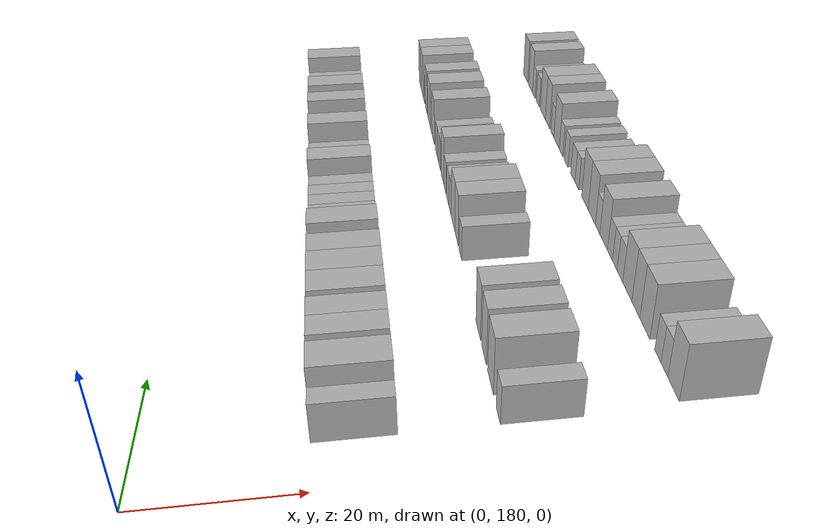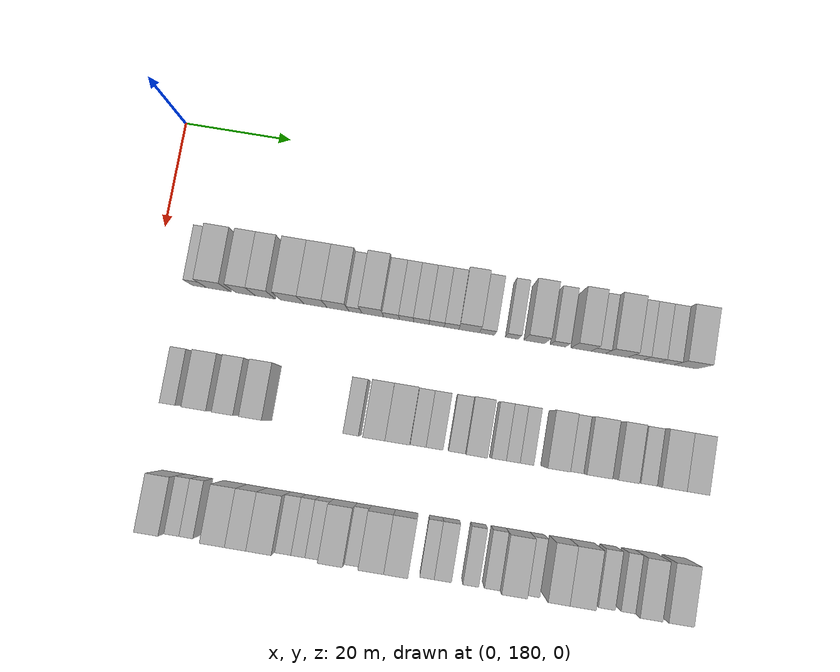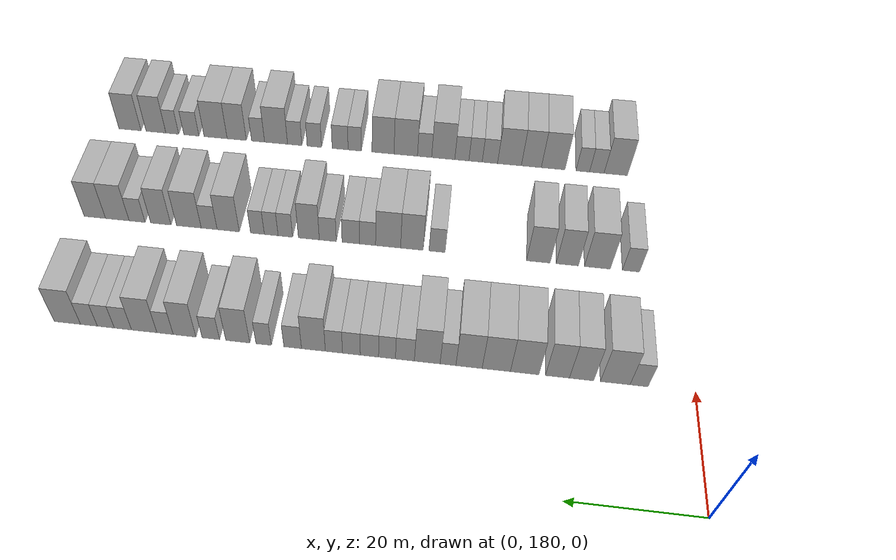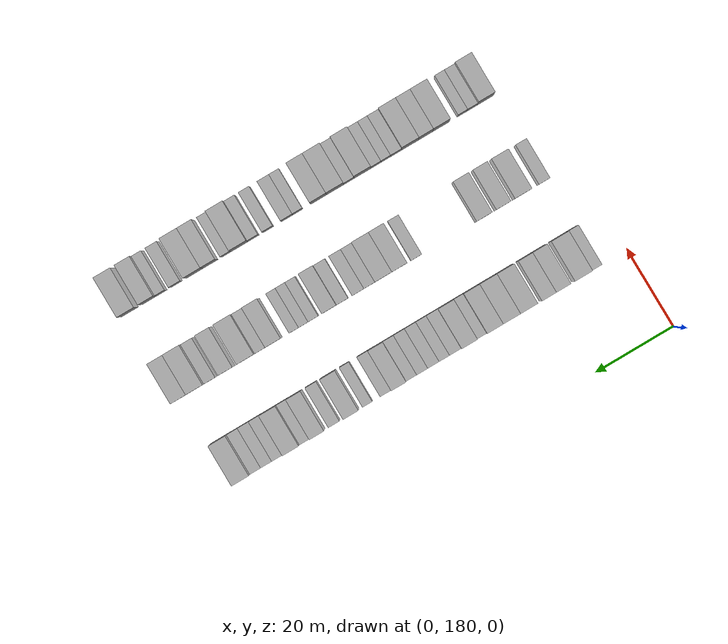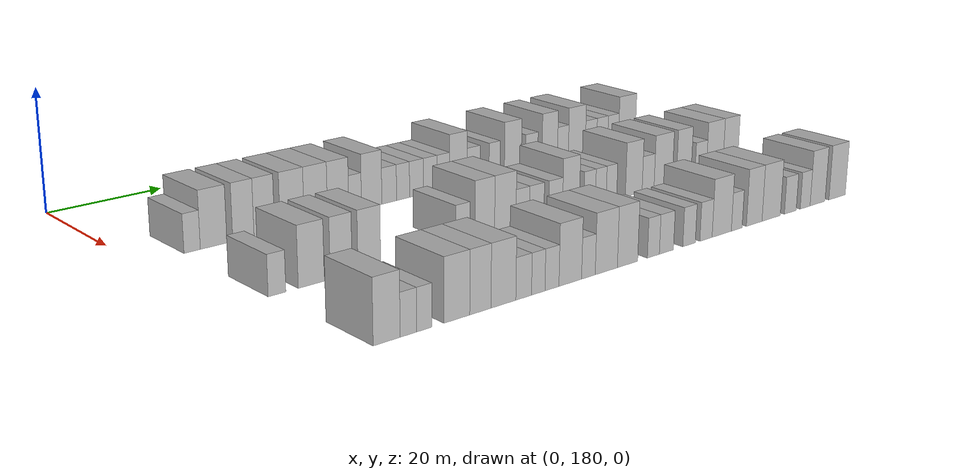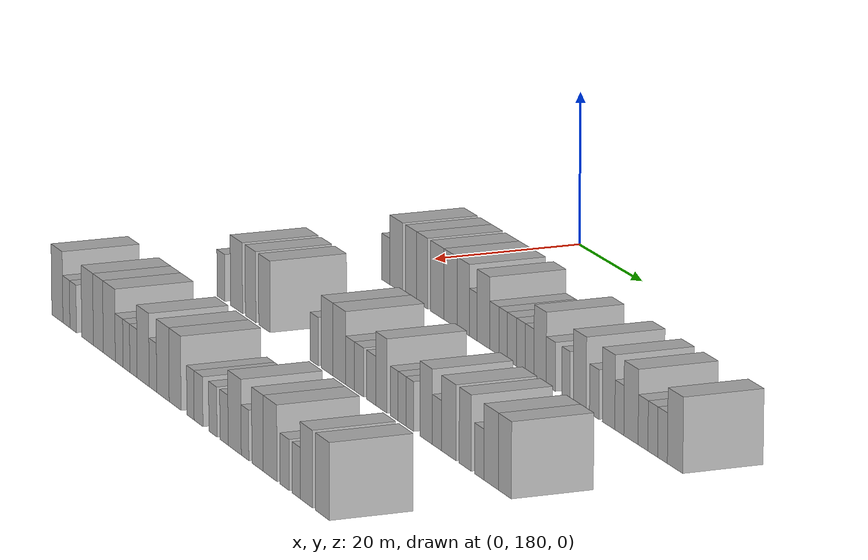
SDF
<sdf version="1.6">
 <world name="default">
  <model name="building_149">
   <static>1</static>
   <pose>25.0000 188.4482 0 0.000000 0.000000 0.000000</pose>
   <link name="link">
    <pose>0 0 3.00 0 0 0</pose>
    <collision name="collision"><geometry><box><size>10.0000 2.7007 6.0000</size></box></geometry></collision>
    <visual name="visual">
     <cast_shadows>0</cast_shadows>
     <geometry><box><size>10.0000 2.7007 6.0000</size></box></geometry>
     <material>
      <script>
       <uri>model://HANNAS_wall/materials/scripts</uri>
       <uri>model://HANNAS_wall/materials/textures</uri>
       <name>vrc/HANNAS_wall</name>
      </script>
     </material>
    </visual>
   </link>
  </model>
  <model name="building_150">
   <static>1</static>
   <pose>25.0000 192.0358 0 0.000000 0.000000 0.000000</pose>
   <link name="link">
    <pose>0 0 4.50 0 0 0</pose>
    <collision name="collision"><geometry><box><size>10.0000 4.4746 9.0000</size></box></geometry></collision>
    <visual name="visual">
     <cast_shadows>0</cast_shadows>
     <geometry><box><size>10.0000 4.4746 9.0000</size></box></geometry>
     <material>
      <script>
       <uri>model://HANNAS_wall/materials/scripts</uri>
       <uri>model://HANNAS_wall/materials/textures</uri>
       <name>vrc/HANNAS_wall</name>
      </script>
     </material>
    </visual>
   </link>
  </model>
  <model name="building_151">
   <static>1</static>
   <pose>25.0000 197.1104 0 0.000000 0.000000 0.000000</pose>
   <link name="link">
    <pose>0 0 4.50 0 0 0</pose>
    <collision name="collision"><geometry><box><size>10.0000 3.6745 9.0000</size></box></geometry></collision>
    <visual name="visual">
     <cast_shadows>0</cast_shadows>
     <geometry><box><size>10.0000 3.6745 9.0000</size></box></geometry>
     <material>
      <script>
       <uri>model://HANNAS_wall/materials/scripts</uri>
       <uri>model://HANNAS_wall/materials/textures</uri>
       <name>vrc/HANNAS_wall</name>
      </script>
     </material>
    </visual>
   </link>
  </model>
  <model name="building_152">
   <static>1</static>
   <pose>25.0000 200.7689 0 0.000000 0.000000 0.000000</pose>
   <link name="link">
    <pose>0 0 4.50 0 0 0</pose>
    <collision name="collision"><geometry><box><size>10.0000 3.6424 9.0000</size></box></geometry></collision>
    <visual name="visual">
     <cast_shadows>0</cast_shadows>
     <geometry><box><size>10.0000 3.6424 9.0000</size></box></geometry>
     <material>
      <script>
       <uri>model://HANNAS_wall/materials/scripts</uri>
       <uri>model://HANNAS_wall/materials/textures</uri>
       <name>vrc/HANNAS_wall</name>
      </script>
     </material>
    </visual>
   </link>
  </model>
  <model name="building_153">
   <static>1</static>
   <pose>25.0000 205.7672 0 0.000000 0.000000 0.000000</pose>
   <link name="link">
    <pose>0 0 4.50 0 0 0</pose>
    <collision name="collision"><geometry><box><size>10.0000 4.3543 9.0000</size></box></geometry></collision>
    <visual name="visual">
     <cast_shadows>0</cast_shadows>
     <geometry><box><size>10.0000 4.3543 9.0000</size></box></geometry>
     <material>
      <script>
       <uri>model://HANNAS_wall/materials/scripts</uri>
       <uri>model://HANNAS_wall/materials/textures</uri>
       <name>vrc/HANNAS_wall</name>
      </script>
     </material>
    </visual>
   </link>
  </model>
  <model name="building_154">
   <static>1</static>
   <pose>25.0000 210.1198 0 0.000000 0.000000 0.000000</pose>
   <link name="link">
    <pose>0 0 4.50 0 0 0</pose>
    <collision name="collision"><geometry><box><size>10.0000 4.3509 9.0000</size></box></geometry></collision>
    <visual name="visual">
     <cast_shadows>0</cast_shadows>
     <geometry><box><size>10.0000 4.3509 9.0000</size></box></geometry>
     <material>
      <script>
       <uri>model://HANNAS_wall/materials/scripts</uri>
       <uri>model://HANNAS_wall/materials/textures</uri>
       <name>vrc/HANNAS_wall</name>
      </script>
     </material>
    </visual>
   </link>
  </model>
  <model name="building_155">
   <static>1</static>
   <pose>25.0000 214.3186 0 0.000000 0.000000 0.000000</pose>
   <link name="link">
    <pose>0 0 4.50 0 0 0</pose>
    <collision name="collision"><geometry><box><size>10.0000 4.0467 9.0000</size></box></geometry></collision>
    <visual name="visual">
     <cast_shadows>0</cast_shadows>
     <geometry><box><size>10.0000 4.0467 9.0000</size></box></geometry>
     <material>
      <script>
       <uri>model://HANNAS_wall/materials/scripts</uri>
       <uri>model://HANNAS_wall/materials/textures</uri>
       <name>vrc/HANNAS_wall</name>
      </script>
     </material>
    </visual>
   </link>
  </model>
  <model name="building_156">
   <static>1</static>
   <pose>25.0000 217.5642 0 0.000000 0.000000 0.000000</pose>
   <link name="link">
    <pose>0 0 3.00 0 0 0</pose>
    <collision name="collision"><geometry><box><size>10.0000 2.4446 6.0000</size></box></geometry></collision>
    <visual name="visual">
     <cast_shadows>0</cast_shadows>
     <geometry><box><size>10.0000 2.4446 6.0000</size></box></geometry>
     <material>
      <script>
       <uri>model://HANNAS_wall/materials/scripts</uri>
       <uri>model://HANNAS_wall/materials/textures</uri>
       <name>vrc/HANNAS_wall</name>
      </script>
     </material>
    </visual>
   </link>
  </model>
  <model name="building_157">
   <static>1</static>
   <pose>25.0000 220.7858 0 0.000000 0.000000 0.000000</pose>
   <link name="link">
    <pose>0 0 4.50 0 0 0</pose>
    <collision name="collision"><geometry><box><size>10.0000 3.9986 9.0000</size></box></geometry></collision>
    <visual name="visual">
     <cast_shadows>0</cast_shadows>
     <geometry><box><size>10.0000 3.9986 9.0000</size></box></geometry>
     <material>
      <script>
       <uri>model://HANNAS_wall/materials/scripts</uri>
       <uri>model://HANNAS_wall/materials/textures</uri>
       <name>vrc/HANNAS_wall</name>
      </script>
     </material>
    </visual>
   </link>
  </model>
  <model name="building_158">
   <static>1</static>
   <pose>25.0000 224.2589 0 0.000000 0.000000 0.000000</pose>
   <link name="link">
    <pose>0 0 3.00 0 0 0</pose>
    <collision name="collision"><geometry><box><size>10.0000 2.9476 6.0000</size></box></geometry></collision>
    <visual name="visual">
     <cast_shadows>0</cast_shadows>
     <geometry><box><size>10.0000 2.9476 6.0000</size></box></geometry>
     <material>
      <script>
       <uri>model://HANNAS_wall/materials/scripts</uri>
       <uri>model://HANNAS_wall/materials/textures</uri>
       <name>vrc/HANNAS_wall</name>
      </script>
     </material>
    </visual>
   </link>
  </model>
  <model name="building_159">
   <static>1</static>
   <pose>25.0000 227.0540 0 0.000000 0.000000 0.000000</pose>
   <link name="link">
    <pose>0 0 3.00 0 0 0</pose>
    <collision name="collision"><geometry><box><size>10.0000 2.6426 6.0000</size></box></geometry></collision>
    <visual name="visual">
     <cast_shadows>0</cast_shadows>
     <geometry><box><size>10.0000 2.6426 6.0000</size></box></geometry>
     <material>
      <script>
       <uri>model://HANNAS_wall/materials/scripts</uri>
       <uri>model://HANNAS_wall/materials/textures</uri>
       <name>vrc/HANNAS_wall</name>
      </script>
     </material>
    </visual>
   </link>
  </model>
  <model name="building_160">
   <static>1</static>
   <pose>25.0000 229.8056 0 0.000000 0.000000 0.000000</pose>
   <link name="link">
    <pose>0 0 3.00 0 0 0</pose>
    <collision name="collision"><geometry><box><size>10.0000 2.8607 6.0000</size></box></geometry></collision>
    <visual name="visual">
     <cast_shadows>0</cast_shadows>
     <geometry><box><size>10.0000 2.8607 6.0000</size></box></geometry>
     <material>
      <script>
       <uri>model://HANNAS_wall/materials/scripts</uri>
       <uri>model://HANNAS_wall/materials/textures</uri>
       <name>vrc/HANNAS_wall</name>
      </script>
     </material>
    </visual>
   </link>
  </model>
  <model name="building_161">
   <static>1</static>
   <pose>25.0000 232.6420 0 0.000000 0.000000 0.000000</pose>
   <link name="link">
    <pose>0 0 3.00 0 0 0</pose>
    <collision name="collision"><geometry><box><size>10.0000 2.8120 6.0000</size></box></geometry></collision>
    <visual name="visual">
     <cast_shadows>0</cast_shadows>
     <geometry><box><size>10.0000 2.8120 6.0000</size></box></geometry>
     <material>
      <script>
       <uri>model://HANNAS_wall/materials/scripts</uri>
       <uri>model://HANNAS_wall/materials/textures</uri>
       <name>vrc/HANNAS_wall</name>
      </script>
     </material>
    </visual>
   </link>
  </model>
  <model name="building_162">
   <static>1</static>
   <pose>25.0000 235.3977 0 0.000000 0.000000 0.000000</pose>
   <link name="link">
    <pose>0 0 3.00 0 0 0</pose>
    <collision name="collision"><geometry><box><size>10.0000 2.6994 6.0000</size></box></geometry></collision>
    <visual name="visual">
     <cast_shadows>0</cast_shadows>
     <geometry><box><size>10.0000 2.6994 6.0000</size></box></geometry>
     <material>
      <script>
       <uri>model://HANNAS_wall/materials/scripts</uri>
       <uri>model://HANNAS_wall/materials/textures</uri>
       <name>vrc/HANNAS_wall</name>
      </script>
     </material>
    </visual>
   </link>
  </model>
  <model name="building_163">
   <static>1</static>
   <pose>25.0000 238.6356 0 0.000000 0.000000 0.000000</pose>
   <link name="link">
    <pose>0 0 4.50 0 0 0</pose>
    <collision name="collision"><geometry><box><size>10.0000 3.7764 9.0000</size></box></geometry></collision>
    <visual name="visual">
     <cast_shadows>0</cast_shadows>
     <geometry><box><size>10.0000 3.7764 9.0000</size></box></geometry>
     <material>
      <script>
       <uri>model://HANNAS_wall/materials/scripts</uri>
       <uri>model://HANNAS_wall/materials/textures</uri>
       <name>vrc/HANNAS_wall</name>
      </script>
     </material>
    </visual>
   </link>
  </model>
  <model name="building_164">
   <static>1</static>
   <pose>25.0000 241.9211 0 0.000000 0.000000 0.000000</pose>
   <link name="link">
    <pose>0 0 3.00 0 0 0</pose>
    <collision name="collision"><geometry><box><size>10.0000 2.7945 6.0000</size></box></geometry></collision>
    <visual name="visual">
     <cast_shadows>0</cast_shadows>
     <geometry><box><size>10.0000 2.7945 6.0000</size></box></geometry>
     <material>
      <script>
       <uri>model://HANNAS_wall/materials/scripts</uri>
       <uri>model://HANNAS_wall/materials/textures</uri>
       <name>vrc/HANNAS_wall</name>
      </script>
     </material>
    </visual>
   </link>
  </model>
  <model name="building_165">
   <static>1</static>
   <pose>25.0000 246.5468 0 0.000000 0.000000 0.000000</pose>
   <link name="link">
    <pose>0 0 3.00 0 0 0</pose>
    <collision name="collision"><geometry><box><size>10.0000 2.4569 6.0000</size></box></geometry></collision>
    <visual name="visual">
     <cast_shadows>0</cast_shadows>
     <geometry><box><size>10.0000 2.4569 6.0000</size></box></geometry>
     <material>
      <script>
       <uri>model://HANNAS_wall/materials/scripts</uri>
       <uri>model://HANNAS_wall/materials/textures</uri>
       <name>vrc/HANNAS_wall</name>
      </script>
     </material>
    </visual>
   </link>
  </model>
  <model name="building_166">
   <static>1</static>
   <pose>25.0000 250.7014 0 0.000000 0.000000 0.000000</pose>
   <link name="link">
    <pose>0 0 4.50 0 0 0</pose>
    <collision name="collision"><geometry><box><size>10.0000 3.8524 9.0000</size></box></geometry></collision>
    <visual name="visual">
     <cast_shadows>0</cast_shadows>
     <geometry><box><size>10.0000 3.8524 9.0000</size></box></geometry>
     <material>
      <script>
       <uri>model://HANNAS_wall/materials/scripts</uri>
       <uri>model://HANNAS_wall/materials/textures</uri>
       <name>vrc/HANNAS_wall</name>
      </script>
     </material>
    </visual>
   </link>
  </model>
  <model name="building_167">
   <static>1</static>
   <pose>25.0000 255.0374 0 0.000000 0.000000 0.000000</pose>
   <link name="link">
    <pose>0 0 3.00 0 0 0</pose>
    <collision name="collision"><geometry><box><size>10.0000 2.8195 6.0000</size></box></geometry></collision>
    <visual name="visual">
     <cast_shadows>0</cast_shadows>
     <geometry><box><size>10.0000 2.8195 6.0000</size></box></geometry>
     <material>
      <script>
       <uri>model://HANNAS_wall/materials/scripts</uri>
       <uri>model://HANNAS_wall/materials/textures</uri>
       <name>vrc/HANNAS_wall</name>
      </script>
     </material>
    </visual>
   </link>
  </model>
  <model name="building_168">
   <static>1</static>
   <pose>25.0000 259.2920 0 0.000000 0.000000 0.000000</pose>
   <link name="link">
    <pose>0 0 4.50 0 0 0</pose>
    <collision name="collision"><geometry><box><size>10.0000 3.6897 9.0000</size></box></geometry></collision>
    <visual name="visual">
     <cast_shadows>0</cast_shadows>
     <geometry><box><size>10.0000 3.6897 9.0000</size></box></geometry>
     <material>
      <script>
       <uri>model://HANNAS_wall/materials/scripts</uri>
       <uri>model://HANNAS_wall/materials/textures</uri>
       <name>vrc/HANNAS_wall</name>
      </script>
     </material>
    </visual>
   </link>
  </model>
  <model name="building_169">
   <static>1</static>
   <pose>25.0000 262.4542 0 0.000000 0.000000 0.000000</pose>
   <link name="link">
    <pose>0 0 3.00 0 0 0</pose>
    <collision name="collision"><geometry><box><size>10.0000 2.6346 6.0000</size></box></geometry></collision>
    <visual name="visual">
     <cast_shadows>0</cast_shadows>
     <geometry><box><size>10.0000 2.6346 6.0000</size></box></geometry>
     <material>
      <script>
       <uri>model://HANNAS_wall/materials/scripts</uri>
       <uri>model://HANNAS_wall/materials/textures</uri>
       <name>vrc/HANNAS_wall</name>
      </script>
     </material>
    </visual>
   </link>
  </model>
  <model name="building_170">
   <static>1</static>
   <pose>25.0000 265.8490 0 0.000000 0.000000 0.000000</pose>
   <link name="link">
    <pose>0 0 4.50 0 0 0</pose>
    <collision name="collision"><geometry><box><size>10.0000 4.1551 9.0000</size></box></geometry></collision>
    <visual name="visual">
     <cast_shadows>0</cast_shadows>
     <geometry><box><size>10.0000 4.1551 9.0000</size></box></geometry>
     <material>
      <script>
       <uri>model://HANNAS_wall/materials/scripts</uri>
       <uri>model://HANNAS_wall/materials/textures</uri>
       <name>vrc/HANNAS_wall</name>
      </script>
     </material>
    </visual>
   </link>
  </model>
  <model name="building_171">
   <static>1</static>
   <pose>25.0000 269.3422 0 0.000000 0.000000 0.000000</pose>
   <link name="link">
    <pose>0 0 3.00 0 0 0</pose>
    <collision name="collision"><geometry><box><size>10.0000 2.8313 6.0000</size></box></geometry></collision>
    <visual name="visual">
     <cast_shadows>0</cast_shadows>
     <geometry><box><size>10.0000 2.8313 6.0000</size></box></geometry>
     <material>
      <script>
       <uri>model://HANNAS_wall/materials/scripts</uri>
       <uri>model://HANNAS_wall/materials/textures</uri>
       <name>vrc/HANNAS_wall</name>
      </script>
     </material>
    </visual>
   </link>
  </model>
  <model name="building_172">
   <static>1</static>
   <pose>25.0000 272.1511 0 0.000000 0.000000 0.000000</pose>
   <link name="link">
    <pose>0 0 3.00 0 0 0</pose>
    <collision name="collision"><geometry><box><size>10.0000 2.7865 6.0000</size></box></geometry></collision>
    <visual name="visual">
     <cast_shadows>0</cast_shadows>
     <geometry><box><size>10.0000 2.7865 6.0000</size></box></geometry>
     <material>
      <script>
       <uri>model://HANNAS_wall/materials/scripts</uri>
       <uri>model://HANNAS_wall/materials/textures</uri>
       <name>vrc/HANNAS_wall</name>
      </script>
     </material>
    </visual>
   </link>
  </model>
  <model name="building_173">
   <static>1</static>
   <pose>25.0000 274.9294 0 0.000000 0.000000 0.000000</pose>
   <link name="link">
    <pose>0 0 3.00 0 0 0</pose>
    <collision name="collision"><geometry><box><size>10.0000 2.7701 6.0000</size></box></geometry></collision>
    <visual name="visual">
     <cast_shadows>0</cast_shadows>
     <geometry><box><size>10.0000 2.7701 6.0000</size></box></geometry>
     <material>
      <script>
       <uri>model://HANNAS_wall/materials/scripts</uri>
       <uri>model://HANNAS_wall/materials/textures</uri>
       <name>vrc/HANNAS_wall</name>
      </script>
     </material>
    </visual>
   </link>
  </model>
  <model name="building_174">
   <static>1</static>
   <pose>25.0000 278.4952 0 0.000000 0.000000 0.000000</pose>
   <link name="link">
    <pose>0 0 4.50 0 0 0</pose>
    <collision name="collision"><geometry><box><size>10.0000 4.3614 9.0000</size></box></geometry></collision>
    <visual name="visual">
     <cast_shadows>0</cast_shadows>
     <geometry><box><size>10.0000 4.3614 9.0000</size></box></geometry>
     <material>
      <script>
       <uri>model://HANNAS_wall/materials/scripts</uri>
       <uri>model://HANNAS_wall/materials/textures</uri>
       <name>vrc/HANNAS_wall</name>
      </script>
     </material>
    </visual>
   </link>
  </model>
  <model name="building_339">
   <static>1</static>
   <pose>47.0000 188.5526 0 0.000000 0.000000 0.000000</pose>
   <link name="link">
    <pose>0 0 3.00 0 0 0</pose>
    <collision name="collision"><geometry><box><size>10.0000 2.8192 6.0000</size></box></geometry></collision>
    <visual name="visual">
     <cast_shadows>0</cast_shadows>
     <geometry><box><size>10.0000 2.8192 6.0000</size></box></geometry>
     <material>
      <script>
       <uri>model://HANNAS_wall/materials/scripts</uri>
       <uri>model://HANNAS_wall/materials/textures</uri>
       <name>vrc/HANNAS_wall</name>
      </script>
     </material>
    </visual>
   </link>
  </model>
  <model name="building_340">
   <static>1</static>
   <pose>47.0000 194.1076 0 0.000000 0.000000 0.000000</pose>
   <link name="link">
    <pose>0 0 4.50 0 0 0</pose>
    <collision name="collision"><geometry><box><size>10.0000 4.2909 9.0000</size></box></geometry></collision>
    <visual name="visual">
     <cast_shadows>0</cast_shadows>
     <geometry><box><size>10.0000 4.2909 9.0000</size></box></geometry>
     <material>
      <script>
       <uri>model://HANNAS_wall/materials/scripts</uri>
       <uri>model://HANNAS_wall/materials/textures</uri>
       <name>vrc/HANNAS_wall</name>
      </script>
     </material>
    </visual>
   </link>
  </model>
  <model name="building_341">
   <static>1</static>
   <pose>47.0000 199.1031 0 0.000000 0.000000 0.000000</pose>
   <link name="link">
    <pose>0 0 4.50 0 0 0</pose>
    <collision name="collision"><geometry><box><size>10.0000 3.7001 9.0000</size></box></geometry></collision>
    <visual name="visual">
     <cast_shadows>0</cast_shadows>
     <geometry><box><size>10.0000 3.7001 9.0000</size></box></geometry>
     <material>
      <script>
       <uri>model://HANNAS_wall/materials/scripts</uri>
       <uri>model://HANNAS_wall/materials/textures</uri>
       <name>vrc/HANNAS_wall</name>
      </script>
     </material>
    </visual>
   </link>
  </model>
  <model name="building_342">
   <static>1</static>
   <pose>47.0000 203.9325 0 0.000000 0.000000 0.000000</pose>
   <link name="link">
    <pose>0 0 4.50 0 0 0</pose>
    <collision name="collision"><geometry><box><size>10.0000 3.9587 9.0000</size></box></geometry></collision>
    <visual name="visual">
     <cast_shadows>0</cast_shadows>
     <geometry><box><size>10.0000 3.9587 9.0000</size></box></geometry>
     <material>
      <script>
       <uri>model://HANNAS_wall/materials/scripts</uri>
       <uri>model://HANNAS_wall/materials/textures</uri>
       <name>vrc/HANNAS_wall</name>
      </script>
     </material>
    </visual>
   </link>
  </model>
  <model name="building_343">
   <static>1</static>
   <pose>47.0000 221.0221 0 0.000000 0.000000 0.000000</pose>
   <link name="link">
    <pose>0 0 3.00 0 0 0</pose>
    <collision name="collision"><geometry><box><size>10.0000 2.7402 6.0000</size></box></geometry></collision>
    <visual name="visual">
     <cast_shadows>0</cast_shadows>
     <geometry><box><size>10.0000 2.7402 6.0000</size></box></geometry>
     <material>
      <script>
       <uri>model://HANNAS_wall/materials/scripts</uri>
       <uri>model://HANNAS_wall/materials/textures</uri>
       <name>vrc/HANNAS_wall</name>
      </script>
     </material>
    </visual>
   </link>
  </model>
  <model name="building_344">
   <static>1</static>
   <pose>47.0000 225.3161 0 0.000000 0.000000 0.000000</pose>
   <link name="link">
    <pose>0 0 4.50 0 0 0</pose>
    <collision name="collision"><geometry><box><size>10.0000 3.8478 9.0000</size></box></geometry></collision>
    <visual name="visual">
     <cast_shadows>0</cast_shadows>
     <geometry><box><size>10.0000 3.8478 9.0000</size></box></geometry>
     <material>
      <script>
       <uri>model://HANNAS_wall/materials/scripts</uri>
       <uri>model://HANNAS_wall/materials/textures</uri>
       <name>vrc/HANNAS_wall</name>
      </script>
     </material>
    </visual>
   </link>
  </model>
  <model name="building_345">
   <static>1</static>
   <pose>47.0000 229.3897 0 0.000000 0.000000 0.000000</pose>
   <link name="link">
    <pose>0 0 4.50 0 0 0</pose>
    <collision name="collision"><geometry><box><size>10.0000 4.2993 9.0000</size></box></geometry></collision>
    <visual name="visual">
     <cast_shadows>0</cast_shadows>
     <geometry><box><size>10.0000 4.2993 9.0000</size></box></geometry>
     <material>
      <script>
       <uri>model://HANNAS_wall/materials/scripts</uri>
       <uri>model://HANNAS_wall/materials/textures</uri>
       <name>vrc/HANNAS_wall</name>
      </script>
     </material>
    </visual>
   </link>
  </model>
  <model name="building_346">
   <static>1</static>
   <pose>47.0000 232.9323 0 0.000000 0.000000 0.000000</pose>
   <link name="link">
    <pose>0 0 3.00 0 0 0</pose>
    <collision name="collision"><geometry><box><size>10.0000 2.7858 6.0000</size></box></geometry></collision>
    <visual name="visual">
     <cast_shadows>0</cast_shadows>
     <geometry><box><size>10.0000 2.7858 6.0000</size></box></geometry>
     <material>
      <script>
       <uri>model://HANNAS_wall/materials/scripts</uri>
       <uri>model://HANNAS_wall/materials/textures</uri>
       <name>vrc/HANNAS_wall</name>
      </script>
     </material>
    </visual>
   </link>
  </model>
  <model name="building_347">
   <static>1</static>
   <pose>47.0000 235.8226 0 0.000000 0.000000 0.000000</pose>
   <link name="link">
    <pose>0 0 3.00 0 0 0</pose>
    <collision name="collision"><geometry><box><size>10.0000 2.9950 6.0000</size></box></geometry></collision>
    <visual name="visual">
     <cast_shadows>0</cast_shadows>
     <geometry><box><size>10.0000 2.9950 6.0000</size></box></geometry>
     <material>
      <script>
       <uri>model://HANNAS_wall/materials/scripts</uri>
       <uri>model://HANNAS_wall/materials/textures</uri>
       <name>vrc/HANNAS_wall</name>
      </script>
     </material>
    </visual>
   </link>
  </model>
  <model name="building_348">
   <static>1</static>
   <pose>47.0000 239.7921 0 0.000000 0.000000 0.000000</pose>
   <link name="link">
    <pose>0 0 3.00 0 0 0</pose>
    <collision name="collision"><geometry><box><size>10.0000 2.9439 6.0000</size></box></geometry></collision>
    <visual name="visual">
     <cast_shadows>0</cast_shadows>
     <geometry><box><size>10.0000 2.9439 6.0000</size></box></geometry>
     <material>
      <script>
       <uri>model://HANNAS_wall/materials/scripts</uri>
       <uri>model://HANNAS_wall/materials/textures</uri>
       <name>vrc/HANNAS_wall</name>
      </script>
     </material>
    </visual>
   </link>
  </model>
  <model name="building_349">
   <static>1</static>
   <pose>47.0000 243.0824 0 0.000000 0.000000 0.000000</pose>
   <link name="link">
    <pose>0 0 4.50 0 0 0</pose>
    <collision name="collision"><geometry><box><size>10.0000 3.6366 9.0000</size></box></geometry></collision>
    <visual name="visual">
     <cast_shadows>0</cast_shadows>
     <geometry><box><size>10.0000 3.6366 9.0000</size></box></geometry>
     <material>
      <script>
       <uri>model://HANNAS_wall/materials/scripts</uri>
       <uri>model://HANNAS_wall/materials/textures</uri>
       <name>vrc/HANNAS_wall</name>
      </script>
     </material>
    </visual>
   </link>
  </model>
  <model name="building_350">
   <static>1</static>
   <pose>47.0000 247.1725 0 0.000000 0.000000 0.000000</pose>
   <link name="link">
    <pose>0 0 3.00 0 0 0</pose>
    <collision name="collision"><geometry><box><size>10.0000 2.5435 6.0000</size></box></geometry></collision>
    <visual name="visual">
     <cast_shadows>0</cast_shadows>
     <geometry><box><size>10.0000 2.5435 6.0000</size></box></geometry>
     <material>
      <script>
       <uri>model://HANNAS_wall/materials/scripts</uri>
       <uri>model://HANNAS_wall/materials/textures</uri>
       <name>vrc/HANNAS_wall</name>
      </script>
     </material>
    </visual>
   </link>
  </model>
  <model name="building_351">
   <static>1</static>
   <pose>47.0000 249.6537 0 0.000000 0.000000 0.000000</pose>
   <link name="link">
    <pose>0 0 3.00 0 0 0</pose>
    <collision name="collision"><geometry><box><size>10.0000 2.4189 6.0000</size></box></geometry></collision>
    <visual name="visual">
     <cast_shadows>0</cast_shadows>
     <geometry><box><size>10.0000 2.4189 6.0000</size></box></geometry>
     <material>
      <script>
       <uri>model://HANNAS_wall/materials/scripts</uri>
       <uri>model://HANNAS_wall/materials/textures</uri>
       <name>vrc/HANNAS_wall</name>
      </script>
     </material>
    </visual>
   </link>
  </model>
  <model name="building_352">
   <static>1</static>
   <pose>47.0000 252.0635 0 0.000000 0.000000 0.000000</pose>
   <link name="link">
    <pose>0 0 3.00 0 0 0</pose>
    <collision name="collision"><geometry><box><size>10.0000 2.4008 6.0000</size></box></geometry></collision>
    <visual name="visual">
     <cast_shadows>0</cast_shadows>
     <geometry><box><size>10.0000 2.4008 6.0000</size></box></geometry>
     <material>
      <script>
       <uri>model://HANNAS_wall/materials/scripts</uri>
       <uri>model://HANNAS_wall/materials/textures</uri>
       <name>vrc/HANNAS_wall</name>
      </script>
     </material>
    </visual>
   </link>
  </model>
  <model name="building_353">
   <static>1</static>
   <pose>47.0000 257.2167 0 0.000000 0.000000 0.000000</pose>
   <link name="link">
    <pose>0 0 4.50 0 0 0</pose>
    <collision name="collision"><geometry><box><size>10.0000 3.9056 9.0000</size></box></geometry></collision>
    <visual name="visual">
     <cast_shadows>0</cast_shadows>
     <geometry><box><size>10.0000 3.9056 9.0000</size></box></geometry>
     <material>
      <script>
       <uri>model://HANNAS_wall/materials/scripts</uri>
       <uri>model://HANNAS_wall/materials/textures</uri>
       <name>vrc/HANNAS_wall</name>
      </script>
     </material>
    </visual>
   </link>
  </model>
  <model name="building_354">
   <static>1</static>
   <pose>47.0000 260.5837 0 0.000000 0.000000 0.000000</pose>
   <link name="link">
    <pose>0 0 3.00 0 0 0</pose>
    <collision name="collision"><geometry><box><size>10.0000 2.8284 6.0000</size></box></geometry></collision>
    <visual name="visual">
     <cast_shadows>0</cast_shadows>
     <geometry><box><size>10.0000 2.8284 6.0000</size></box></geometry>
     <material>
      <script>
       <uri>model://HANNAS_wall/materials/scripts</uri>
       <uri>model://HANNAS_wall/materials/textures</uri>
       <name>vrc/HANNAS_wall</name>
      </script>
     </material>
    </visual>
   </link>
  </model>
  <model name="building_355">
   <static>1</static>
   <pose>47.0000 264.1910 0 0.000000 0.000000 0.000000</pose>
   <link name="link">
    <pose>0 0 4.50 0 0 0</pose>
    <collision name="collision"><geometry><box><size>10.0000 4.3862 9.0000</size></box></geometry></collision>
    <visual name="visual">
     <cast_shadows>0</cast_shadows>
     <geometry><box><size>10.0000 4.3862 9.0000</size></box></geometry>
     <material>
      <script>
       <uri>model://HANNAS_wall/materials/scripts</uri>
       <uri>model://HANNAS_wall/materials/textures</uri>
       <name>vrc/HANNAS_wall</name>
      </script>
     </material>
    </visual>
   </link>
  </model>
  <model name="building_356">
   <static>1</static>
   <pose>47.0000 269.1926 0 0.000000 0.000000 0.000000</pose>
   <link name="link">
    <pose>0 0 4.50 0 0 0</pose>
    <collision name="collision"><geometry><box><size>10.0000 3.6171 9.0000</size></box></geometry></collision>
    <visual name="visual">
     <cast_shadows>0</cast_shadows>
     <geometry><box><size>10.0000 3.6171 9.0000</size></box></geometry>
     <material>
      <script>
       <uri>model://HANNAS_wall/materials/scripts</uri>
       <uri>model://HANNAS_wall/materials/textures</uri>
       <name>vrc/HANNAS_wall</name>
      </script>
     </material>
    </visual>
   </link>
  </model>
  <model name="building_357">
   <static>1</static>
   <pose>47.0000 273.4347 0 0.000000 0.000000 0.000000</pose>
   <link name="link">
    <pose>0 0 3.00 0 0 0</pose>
    <collision name="collision"><geometry><box><size>10.0000 2.8671 6.0000</size></box></geometry></collision>
    <visual name="visual">
     <cast_shadows>0</cast_shadows>
     <geometry><box><size>10.0000 2.8671 6.0000</size></box></geometry>
     <material>
      <script>
       <uri>model://HANNAS_wall/materials/scripts</uri>
       <uri>model://HANNAS_wall/materials/textures</uri>
       <name>vrc/HANNAS_wall</name>
      </script>
     </material>
    </visual>
   </link>
  </model>
  <model name="building_358">
   <static>1</static>
   <pose>47.0000 276.9937 0 0.000000 0.000000 0.000000</pose>
   <link name="link">
    <pose>0 0 4.50 0 0 0</pose>
    <collision name="collision"><geometry><box><size>10.0000 4.2508 9.0000</size></box></geometry></collision>
    <visual name="visual">
     <cast_shadows>0</cast_shadows>
     <geometry><box><size>10.0000 4.2508 9.0000</size></box></geometry>
     <material>
      <script>
       <uri>model://HANNAS_wall/materials/scripts</uri>
       <uri>model://HANNAS_wall/materials/textures</uri>
       <name>vrc/HANNAS_wall</name>
      </script>
     </material>
    </visual>
   </link>
  </model>
  <model name="building_359">
   <static>1</static>
   <pose>47.0000 281.0443 0 0.000000 0.000000 0.000000</pose>
   <link name="link">
    <pose>0 0 4.50 0 0 0</pose>
    <collision name="collision"><geometry><box><size>10.0000 3.8504 9.0000</size></box></geometry></collision>
    <visual name="visual">
     <cast_shadows>0</cast_shadows>
     <geometry><box><size>10.0000 3.8504 9.0000</size></box></geometry>
     <material>
      <script>
       <uri>model://HANNAS_wall/materials/scripts</uri>
       <uri>model://HANNAS_wall/materials/textures</uri>
       <name>vrc/HANNAS_wall</name>
      </script>
     </material>
    </visual>
   </link>
  </model>
  <model name="building_530">
   <static>1</static>
   <pose>69.0000 190.1883 0 0.000000 0.000000 0.000000</pose>
   <link name="link">
    <pose>0 0 4.50 0 0 0</pose>
    <collision name="collision"><geometry><box><size>10.0000 4.1923 9.0000</size></box></geometry></collision>
    <visual name="visual">
     <cast_shadows>0</cast_shadows>
     <geometry><box><size>10.0000 4.1923 9.0000</size></box></geometry>
     <material>
      <script>
       <uri>model://HANNAS_wall/materials/scripts</uri>
       <uri>model://HANNAS_wall/materials/textures</uri>
       <name>vrc/HANNAS_wall</name>
      </script>
     </material>
    </visual>
   </link>
  </model>
  <model name="building_531">
   <static>1</static>
   <pose>69.0000 193.5939 0 0.000000 0.000000 0.000000</pose>
   <link name="link">
    <pose>0 0 3.00 0 0 0</pose>
    <collision name="collision"><geometry><box><size>10.0000 2.6190 6.0000</size></box></geometry></collision>
    <visual name="visual">
     <cast_shadows>0</cast_shadows>
     <geometry><box><size>10.0000 2.6190 6.0000</size></box></geometry>
     <material>
      <script>
       <uri>model://HANNAS_wall/materials/scripts</uri>
       <uri>model://HANNAS_wall/materials/textures</uri>
       <name>vrc/HANNAS_wall</name>
      </script>
     </material>
    </visual>
   </link>
  </model>
  <model name="building_532">
   <static>1</static>
   <pose>69.0000 196.1271 0 0.000000 0.000000 0.000000</pose>
   <link name="link">
    <pose>0 0 3.00 0 0 0</pose>
    <collision name="collision"><geometry><box><size>10.0000 2.4473 6.0000</size></box></geometry></collision>
    <visual name="visual">
     <cast_shadows>0</cast_shadows>
     <geometry><box><size>10.0000 2.4473 6.0000</size></box></geometry>
     <material>
      <script>
       <uri>model://HANNAS_wall/materials/scripts</uri>
       <uri>model://HANNAS_wall/materials/textures</uri>
       <name>vrc/HANNAS_wall</name>
      </script>
     </material>
    </visual>
   </link>
  </model>
  <model name="building_533">
   <static>1</static>
   <pose>69.0000 201.4960 0 0.000000 0.000000 0.000000</pose>
   <link name="link">
    <pose>0 0 4.50 0 0 0</pose>
    <collision name="collision"><geometry><box><size>10.0000 4.2906 9.0000</size></box></geometry></collision>
    <visual name="visual">
     <cast_shadows>0</cast_shadows>
     <geometry><box><size>10.0000 4.2906 9.0000</size></box></geometry>
     <material>
      <script>
       <uri>model://HANNAS_wall/materials/scripts</uri>
       <uri>model://HANNAS_wall/materials/textures</uri>
       <name>vrc/HANNAS_wall</name>
      </script>
     </material>
    </visual>
   </link>
  </model>
  <model name="building_534">
   <static>1</static>
   <pose>69.0000 205.4625 0 0.000000 0.000000 0.000000</pose>
   <link name="link">
    <pose>0 0 4.50 0 0 0</pose>
    <collision name="collision"><geometry><box><size>10.0000 3.6425 9.0000</size></box></geometry></collision>
    <visual name="visual">
     <cast_shadows>0</cast_shadows>
     <geometry><box><size>10.0000 3.6425 9.0000</size></box></geometry>
     <material>
      <script>
       <uri>model://HANNAS_wall/materials/scripts</uri>
       <uri>model://HANNAS_wall/materials/textures</uri>
       <name>vrc/HANNAS_wall</name>
      </script>
     </material>
    </visual>
   </link>
  </model>
  <model name="building_535">
   <static>1</static>
   <pose>69.0000 209.4653 0 0.000000 0.000000 0.000000</pose>
   <link name="link">
    <pose>0 0 4.50 0 0 0</pose>
    <collision name="collision"><geometry><box><size>10.0000 4.3630 9.0000</size></box></geometry></collision>
    <visual name="visual">
     <cast_shadows>0</cast_shadows>
     <geometry><box><size>10.0000 4.3630 9.0000</size></box></geometry>
     <material>
      <script>
       <uri>model://HANNAS_wall/materials/scripts</uri>
       <uri>model://HANNAS_wall/materials/textures</uri>
       <name>vrc/HANNAS_wall</name>
      </script>
     </material>
    </visual>
   </link>
  </model>
  <model name="building_536">
   <static>1</static>
   <pose>69.0000 213.0562 0 0.000000 0.000000 0.000000</pose>
   <link name="link">
    <pose>0 0 3.00 0 0 0</pose>
    <collision name="collision"><geometry><box><size>10.0000 2.8187 6.0000</size></box></geometry></collision>
    <visual name="visual">
     <cast_shadows>0</cast_shadows>
     <geometry><box><size>10.0000 2.8187 6.0000</size></box></geometry>
     <material>
      <script>
       <uri>model://HANNAS_wall/materials/scripts</uri>
       <uri>model://HANNAS_wall/materials/textures</uri>
       <name>vrc/HANNAS_wall</name>
      </script>
     </material>
    </visual>
   </link>
  </model>
  <model name="building_537">
   <static>1</static>
   <pose>69.0000 215.6905 0 0.000000 0.000000 0.000000</pose>
   <link name="link">
    <pose>0 0 3.00 0 0 0</pose>
    <collision name="collision"><geometry><box><size>10.0000 2.4499 6.0000</size></box></geometry></collision>
    <visual name="visual">
     <cast_shadows>0</cast_shadows>
     <geometry><box><size>10.0000 2.4499 6.0000</size></box></geometry>
     <material>
      <script>
       <uri>model://HANNAS_wall/materials/scripts</uri>
       <uri>model://HANNAS_wall/materials/textures</uri>
       <name>vrc/HANNAS_wall</name>
      </script>
     </material>
    </visual>
   </link>
  </model>
  <model name="building_538">
   <static>1</static>
   <pose>69.0000 218.2120 0 0.000000 0.000000 0.000000</pose>
   <link name="link">
    <pose>0 0 3.00 0 0 0</pose>
    <collision name="collision"><geometry><box><size>10.0000 2.5933 6.0000</size></box></geometry></collision>
    <visual name="visual">
     <cast_shadows>0</cast_shadows>
     <geometry><box><size>10.0000 2.5933 6.0000</size></box></geometry>
     <material>
      <script>
       <uri>model://HANNAS_wall/materials/scripts</uri>
       <uri>model://HANNAS_wall/materials/textures</uri>
       <name>vrc/HANNAS_wall</name>
      </script>
     </material>
    </visual>
   </link>
  </model>
  <model name="building_539">
   <static>1</static>
   <pose>69.0000 221.6501 0 0.000000 0.000000 0.000000</pose>
   <link name="link">
    <pose>0 0 4.50 0 0 0</pose>
    <collision name="collision"><geometry><box><size>10.0000 4.2829 9.0000</size></box></geometry></collision>
    <visual name="visual">
     <cast_shadows>0</cast_shadows>
     <geometry><box><size>10.0000 4.2829 9.0000</size></box></geometry>
     <material>
      <script>
       <uri>model://HANNAS_wall/materials/scripts</uri>
       <uri>model://HANNAS_wall/materials/textures</uri>
       <name>vrc/HANNAS_wall</name>
      </script>
     </material>
    </visual>
   </link>
  </model>
  <model name="building_540">
   <static>1</static>
   <pose>69.0000 225.1110 0 0.000000 0.000000 0.000000</pose>
   <link name="link">
    <pose>0 0 3.00 0 0 0</pose>
    <collision name="collision"><geometry><box><size>10.0000 2.6388 6.0000</size></box></geometry></collision>
    <visual name="visual">
     <cast_shadows>0</cast_shadows>
     <geometry><box><size>10.0000 2.6388 6.0000</size></box></geometry>
     <material>
      <script>
       <uri>model://HANNAS_wall/materials/scripts</uri>
       <uri>model://HANNAS_wall/materials/textures</uri>
       <name>vrc/HANNAS_wall</name>
      </script>
     </material>
    </visual>
   </link>
  </model>
  <model name="building_541">
   <static>1</static>
   <pose>69.0000 228.6138 0 0.000000 0.000000 0.000000</pose>
   <link name="link">
    <pose>0 0 4.50 0 0 0</pose>
    <collision name="collision"><geometry><box><size>10.0000 4.3668 9.0000</size></box></geometry></collision>
    <visual name="visual">
     <cast_shadows>0</cast_shadows>
     <geometry><box><size>10.0000 4.3668 9.0000</size></box></geometry>
     <material>
      <script>
       <uri>model://HANNAS_wall/materials/scripts</uri>
       <uri>model://HANNAS_wall/materials/textures</uri>
       <name>vrc/HANNAS_wall</name>
      </script>
     </material>
    </visual>
   </link>
  </model>
  <model name="building_542">
   <static>1</static>
   <pose>69.0000 232.8520 0 0.000000 0.000000 0.000000</pose>
   <link name="link">
    <pose>0 0 4.50 0 0 0</pose>
    <collision name="collision"><geometry><box><size>10.0000 4.1095 9.0000</size></box></geometry></collision>
    <visual name="visual">
     <cast_shadows>0</cast_shadows>
     <geometry><box><size>10.0000 4.1095 9.0000</size></box></geometry>
     <material>
      <script>
       <uri>model://HANNAS_wall/materials/scripts</uri>
       <uri>model://HANNAS_wall/materials/textures</uri>
       <name>vrc/HANNAS_wall</name>
      </script>
     </material>
    </visual>
   </link>
  </model>
  <model name="building_543">
   <static>1</static>
   <pose>69.0000 238.1571 0 0.000000 0.000000 0.000000</pose>
   <link name="link">
    <pose>0 0 3.00 0 0 0</pose>
    <collision name="collision"><geometry><box><size>10.0000 2.5008 6.0000</size></box></geometry></collision>
    <visual name="visual">
     <cast_shadows>0</cast_shadows>
     <geometry><box><size>10.0000 2.5008 6.0000</size></box></geometry>
     <material>
      <script>
       <uri>model://HANNAS_wall/materials/scripts</uri>
       <uri>model://HANNAS_wall/materials/textures</uri>
       <name>vrc/HANNAS_wall</name>
      </script>
     </material>
    </visual>
   </link>
  </model>
  <model name="building_544">
   <static>1</static>
   <pose>69.0000 240.9050 0 0.000000 0.000000 0.000000</pose>
   <link name="link">
    <pose>0 0 3.00 0 0 0</pose>
    <collision name="collision"><geometry><box><size>10.0000 2.9949 6.0000</size></box></geometry></collision>
    <visual name="visual">
     <cast_shadows>0</cast_shadows>
     <geometry><box><size>10.0000 2.9949 6.0000</size></box></geometry>
     <material>
      <script>
       <uri>model://HANNAS_wall/materials/scripts</uri>
       <uri>model://HANNAS_wall/materials/textures</uri>
       <name>vrc/HANNAS_wall</name>
      </script>
     </material>
    </visual>
   </link>
  </model>
  <model name="building_545">
   <static>1</static>
   <pose>69.0000 245.7674 0 0.000000 0.000000 0.000000</pose>
   <link name="link">
    <pose>0 0 3.00 0 0 0</pose>
    <collision name="collision"><geometry><box><size>10.0000 2.7300 6.0000</size></box></geometry></collision>
    <visual name="visual">
     <cast_shadows>0</cast_shadows>
     <geometry><box><size>10.0000 2.7300 6.0000</size></box></geometry>
     <material>
      <script>
       <uri>model://HANNAS_wall/materials/scripts</uri>
       <uri>model://HANNAS_wall/materials/textures</uri>
       <name>vrc/HANNAS_wall</name>
      </script>
     </material>
    </visual>
   </link>
  </model>
  <model name="building_546">
   <static>1</static>
   <pose>69.0000 249.4939 0 0.000000 0.000000 0.000000</pose>
   <link name="link">
    <pose>0 0 3.00 0 0 0</pose>
    <collision name="collision"><geometry><box><size>10.0000 2.7229 6.0000</size></box></geometry></collision>
    <visual name="visual">
     <cast_shadows>0</cast_shadows>
     <geometry><box><size>10.0000 2.7229 6.0000</size></box></geometry>
     <material>
      <script>
       <uri>model://HANNAS_wall/materials/scripts</uri>
       <uri>model://HANNAS_wall/materials/textures</uri>
       <name>vrc/HANNAS_wall</name>
      </script>
     </material>
    </visual>
   </link>
  </model>
  <model name="building_547">
   <static>1</static>
   <pose>69.0000 253.0381 0 0.000000 0.000000 0.000000</pose>
   <link name="link">
    <pose>0 0 4.50 0 0 0</pose>
    <collision name="collision"><geometry><box><size>10.0000 4.3655 9.0000</size></box></geometry></collision>
    <visual name="visual">
     <cast_shadows>0</cast_shadows>
     <geometry><box><size>10.0000 4.3655 9.0000</size></box></geometry>
     <material>
      <script>
       <uri>model://HANNAS_wall/materials/scripts</uri>
       <uri>model://HANNAS_wall/materials/textures</uri>
       <name>vrc/HANNAS_wall</name>
      </script>
     </material>
    </visual>
   </link>
  </model>
  <model name="building_548">
   <static>1</static>
   <pose>69.0000 256.4671 0 0.000000 0.000000 0.000000</pose>
   <link name="link">
    <pose>0 0 3.00 0 0 0</pose>
    <collision name="collision"><geometry><box><size>10.0000 2.4925 6.0000</size></box></geometry></collision>
    <visual name="visual">
     <cast_shadows>0</cast_shadows>
     <geometry><box><size>10.0000 2.4925 6.0000</size></box></geometry>
     <material>
      <script>
       <uri>model://HANNAS_wall/materials/scripts</uri>
       <uri>model://HANNAS_wall/materials/textures</uri>
       <name>vrc/HANNAS_wall</name>
      </script>
     </material>
    </visual>
   </link>
  </model>
  <model name="building_549">
   <static>1</static>
   <pose>69.0000 260.5593 0 0.000000 0.000000 0.000000</pose>
   <link name="link">
    <pose>0 0 4.50 0 0 0</pose>
    <collision name="collision"><geometry><box><size>10.0000 3.6919 9.0000</size></box></geometry></collision>
    <visual name="visual">
     <cast_shadows>0</cast_shadows>
     <geometry><box><size>10.0000 3.6919 9.0000</size></box></geometry>
     <material>
      <script>
       <uri>model://HANNAS_wall/materials/scripts</uri>
       <uri>model://HANNAS_wall/materials/textures</uri>
       <name>vrc/HANNAS_wall</name>
      </script>
     </material>
    </visual>
   </link>
  </model>
  <model name="building_550">
   <static>1</static>
   <pose>69.0000 264.6201 0 0.000000 0.000000 0.000000</pose>
   <link name="link">
    <pose>0 0 4.50 0 0 0</pose>
    <collision name="collision"><geometry><box><size>10.0000 4.4297 9.0000</size></box></geometry></collision>
    <visual name="visual">
     <cast_shadows>0</cast_shadows>
     <geometry><box><size>10.0000 4.4297 9.0000</size></box></geometry>
     <material>
      <script>
       <uri>model://HANNAS_wall/materials/scripts</uri>
       <uri>model://HANNAS_wall/materials/textures</uri>
       <name>vrc/HANNAS_wall</name>
      </script>
     </material>
    </visual>
   </link>
  </model>
  <model name="building_551">
   <static>1</static>
   <pose>69.0000 269.2971 0 0.000000 0.000000 0.000000</pose>
   <link name="link">
    <pose>0 0 3.00 0 0 0</pose>
    <collision name="collision"><geometry><box><size>10.0000 2.9244 6.0000</size></box></geometry></collision>
    <visual name="visual">
     <cast_shadows>0</cast_shadows>
     <geometry><box><size>10.0000 2.9244 6.0000</size></box></geometry>
     <material>
      <script>
       <uri>model://HANNAS_wall/materials/scripts</uri>
       <uri>model://HANNAS_wall/materials/textures</uri>
       <name>vrc/HANNAS_wall</name>
      </script>
     </material>
    </visual>
   </link>
  </model>
  <model name="building_552">
   <static>1</static>
   <pose>69.0000 273.0060 0 0.000000 0.000000 0.000000</pose>
   <link name="link">
    <pose>0 0 3.00 0 0 0</pose>
    <collision name="collision"><geometry><box><size>10.0000 2.4934 6.0000</size></box></geometry></collision>
    <visual name="visual">
     <cast_shadows>0</cast_shadows>
     <geometry><box><size>10.0000 2.4934 6.0000</size></box></geometry>
     <material>
      <script>
       <uri>model://HANNAS_wall/materials/scripts</uri>
       <uri>model://HANNAS_wall/materials/textures</uri>
       <name>vrc/HANNAS_wall</name>
      </script>
     </material>
    </visual>
   </link>
  </model>
  <model name="building_553">
   <static>1</static>
   <pose>69.0000 276.1735 0 0.000000 0.000000 0.000000</pose>
   <link name="link">
    <pose>0 0 4.50 0 0 0</pose>
    <collision name="collision"><geometry><box><size>10.0000 3.8414 9.0000</size></box></geometry></collision>
    <visual name="visual">
     <cast_shadows>0</cast_shadows>
     <geometry><box><size>10.0000 3.8414 9.0000</size></box></geometry>
     <material>
      <script>
       <uri>model://HANNAS_wall/materials/scripts</uri>
       <uri>model://HANNAS_wall/materials/textures</uri>
       <name>vrc/HANNAS_wall</name>
      </script>
     </material>
    </visual>
   </link>
  </model>
  <model name="building_554">
   <static>1</static>
   <pose>69.0000 281.2427 0 0.000000 0.000000 0.000000</pose>
   <link name="link">
    <pose>0 0 4.50 0 0 0</pose>
    <collision name="collision"><geometry><box><size>10.0000 4.2971 9.0000</size></box></geometry></collision>
    <visual name="visual">
     <cast_shadows>0</cast_shadows>
     <geometry><box><size>10.0000 4.2971 9.0000</size></box></geometry>
     <material>
      <script>
       <uri>model://HANNAS_wall/materials/scripts</uri>
       <uri>model://HANNAS_wall/materials/textures</uri>
       <name>vrc/HANNAS_wall</name>
      </script>
     </material>
    </visual>
   </link>
  </model>
 </world>
</sdf>
